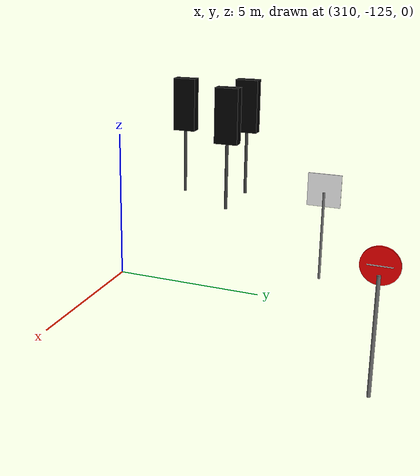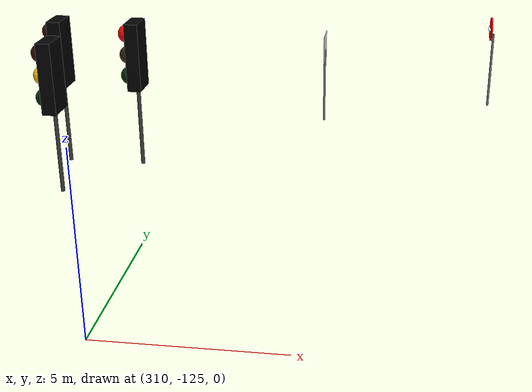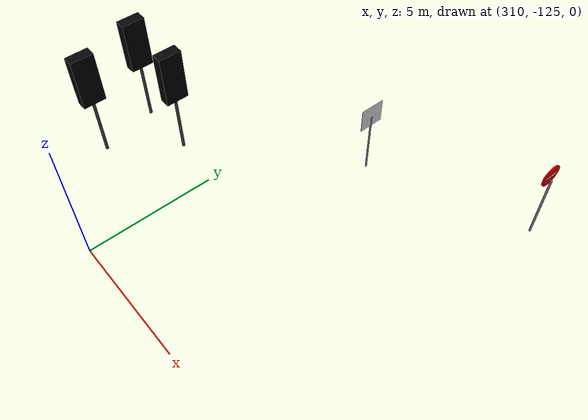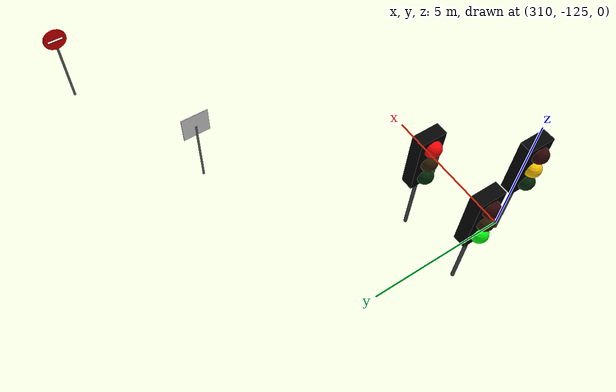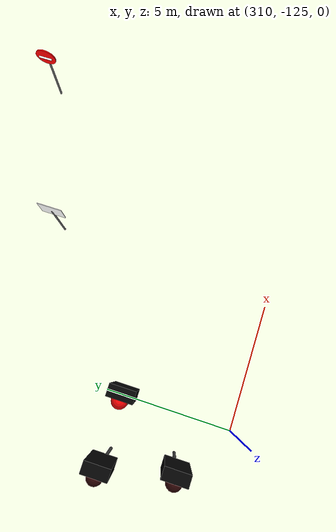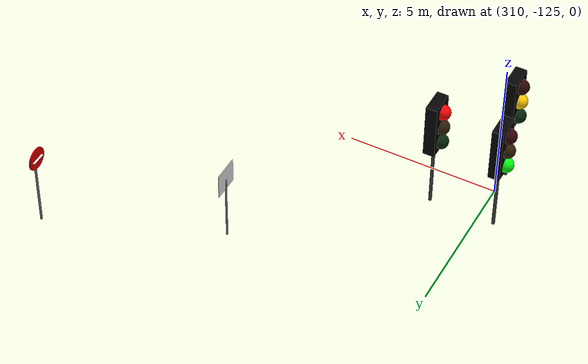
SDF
<sdf version="1.10">
 <world name="sonoma">
  <scene>
   <grid>false</grid>
   <ambient>0.400000006 0.400000006 0.400000006 1</ambient>
   <background>0.699999988 0.699999988 0.699999988 1</background>
   <shadows>true</shadows>
  </scene>
  <plugin name="ignition::gazebo::systems::Physics" filename="ignition-gazebo-physics-system"/>
  <plugin name="ignition::gazebo::systems::Sensors" filename="ignition-gazebo-sensors-system">
   <render_engine>ogre2</render_engine>
  </plugin>
  <plugin name="ignition::gazebo::systems::UserCommands" filename="ignition-gazebo-user-commands-system"/>
  <plugin name="ignition::gazebo::systems::SceneBroadcaster" filename="ignition-gazebo-scene-broadcaster-system"/>
  <gravity>0 0 -9.8000000000000007</gravity>
  <magnetic_field>5.5644999999999998e-06 2.2875799999999999e-05 -4.2388400000000002e-05</magnetic_field>
  <atmosphere type="adiabatic"/>
  <physics type="ode">
   <max_step_size>0.001</max_step_size>
   <real_time_factor>1</real_time_factor>
   <real_time_update_rate>1000</real_time_update_rate>
  </physics>
  <include>
   <uri>model://traffic_light_red_model</uri>
   <name>traffic_light_red_1</name>
   <pose>310.5 -121.0 3 0 0 0</pose>
  </include>
  <include>
   <uri>model://traffic_light_yellow_model</uri>
   <name>traffic_light_yellow_1</name>
   <pose>309.0 -123.0 3 0 0 0</pose>
  </include>
  <include>
   <uri>model://traffic_light_green_model</uri>
   <name>traffic_light_green_1</name>
   <pose>308.5 -121.0 3.0 0 0 0</pose>
  </include>
  <include><uri>model://speed30_new</uri><name>speed30_new_1</name><pose>315.0 -117.0 3.0 0 0 0</pose></include>
  <include>
   <uri>model://stop_sign_model</uri>
   <name>stop_sign_1</name>
   <pose>320.0  -115.0 3.0 0 0 0</pose>
  </include>
 </world>
</sdf>

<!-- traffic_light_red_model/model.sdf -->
<sdf version="1.9">
  <model name="traffic_light_red_model">
    <static>true</static>
    <link name="traffic_light_link">
      <collision name="pole_collision">
        <pose>0 0 1.25 0 0 0</pose>
        <geometry><cylinder><radius>0.05</radius><length>2.5</length></cylinder></geometry>
      </collision>
      <visual name="pole_visual">
        <pose>0 0 1.25 0 0 0</pose>
        <geometry><cylinder><radius>0.05</radius><length>2.5</length></cylinder></geometry>
        <material><ambient>0.25 0.25 0.25 1</ambient><diffuse>0.25 0.25 0.25 1</diffuse></material>
      </visual>

      <collision name="housing_collision">
        <pose>0 0 3.0 0 0 0</pose>
        <geometry><box><size>0.35 0.75 1.75</size></box></geometry>
      </collision>
      <visual name="housing_visual">
        <pose>0 0 3.0 0 0 0</pose>
        <geometry><box><size>0.35 0.75 1.75</size></box></geometry>
        <material><ambient>0.01 0.01 0.01 1</ambient><diffuse>0.01 0.01 0.01 1</diffuse></material>
      </visual>

      <visual name="red_lamp_visual">
        <pose>-0.20 0 3.55 0 0 0</pose>
        <geometry><sphere><radius>0.23</radius></sphere></geometry>
        <material><ambient>1 0.02 0.02 1</ambient><diffuse>1 0.02 0.02 1</diffuse><emissive>1 0 0 1</emissive></material>
      </visual>
      <visual name="yellow_lamp_visual">
        <pose>-0.20 0 3.00 0 0 0</pose>
        <geometry><sphere><radius>0.23</radius></sphere></geometry>
        <material><ambient>0.18 0.12 0.02 1</ambient><diffuse>0.18 0.12 0.02 1</diffuse><emissive>0 0 0 1</emissive></material>
      </visual>
      <visual name="green_lamp_visual">
        <pose>-0.20 0 2.45 0 0 0</pose>
        <geometry><sphere><radius>0.23</radius></sphere></geometry>
        <material><ambient>0.02 0.16 0.04 1</ambient><diffuse>0.02 0.16 0.04 1</diffuse><emissive>0 0 0 1</emissive></material>
      </visual>
    </link>
  </model>
</sdf>

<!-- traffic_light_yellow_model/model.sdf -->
<sdf version="1.9">
  <model name="traffic_light_yellow_model">
    <static>true</static>
    <link name="traffic_light_link">
      <collision name="pole_collision">
        <pose>0 0 1.25 0 0 0</pose>
        <geometry><cylinder><radius>0.05</radius><length>2.5</length></cylinder></geometry>
      </collision>
      <visual name="pole_visual">
        <pose>0 0 1.25 0 0 0</pose>
        <geometry><cylinder><radius>0.05</radius><length>2.5</length></cylinder></geometry>
        <material><ambient>0.25 0.25 0.25 1</ambient><diffuse>0.25 0.25 0.25 1</diffuse></material>
      </visual>

      <collision name="housing_collision">
        <pose>0 0 3.0 0 0 0</pose>
        <geometry><box><size>0.35 0.75 1.75</size></box></geometry>
      </collision>
      <visual name="housing_visual">
        <pose>0 0 3.0 0 0 0</pose>
        <geometry><box><size>0.35 0.75 1.75</size></box></geometry>
        <material><ambient>0.01 0.01 0.01 1</ambient><diffuse>0.01 0.01 0.01 1</diffuse></material>
      </visual>

      <visual name="red_lamp_visual">
        <pose>-0.20 0 3.55 0 0 0</pose>
        <geometry><sphere><radius>0.23</radius></sphere></geometry>
        <material><ambient>0.18 0.02 0.02 1</ambient><diffuse>0.18 0.02 0.02 1</diffuse><emissive>0 0 0 1</emissive></material>
      </visual>
      <visual name="yellow_lamp_visual">
        <pose>-0.20 0 3.00 0 0 0</pose>
        <geometry><sphere><radius>0.23</radius></sphere></geometry>
        <material><ambient>1 0.78 0.02 1</ambient><diffuse>1 0.78 0.02 1</diffuse><emissive>1 0.55 0 1</emissive></material>
      </visual>
      <visual name="green_lamp_visual">
        <pose>-0.20 0 2.45 0 0 0</pose>
        <geometry><sphere><radius>0.23</radius></sphere></geometry>
        <material><ambient>0.02 0.16 0.04 1</ambient><diffuse>0.02 0.16 0.04 1</diffuse><emissive>0 0 0 1</emissive></material>
      </visual>
    </link>
  </model>
</sdf>

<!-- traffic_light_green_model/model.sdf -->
<sdf version="1.9">
  <model name="traffic_light_green_model">
    <static>true</static>
    <link name="traffic_light_link">
      <collision name="pole_collision">
        <pose>0 0 1.25 0 0 0</pose>
        <geometry><cylinder><radius>0.05</radius><length>2.5</length></cylinder></geometry>
      </collision>
      <visual name="pole_visual">
        <pose>0 0 1.25 0 0 0</pose>
        <geometry><cylinder><radius>0.05</radius><length>2.5</length></cylinder></geometry>
        <material><ambient>0.25 0.25 0.25 1</ambient><diffuse>0.25 0.25 0.25 1</diffuse></material>
      </visual>

      <collision name="housing_collision">
        <pose>0 0 3.0 0 0 0</pose>
        <geometry><box><size>0.35 0.75 1.75</size></box></geometry>
      </collision>
      <visual name="housing_visual">
        <pose>0 0 3.0 0 0 0</pose>
        <geometry><box><size>0.35 0.75 1.75</size></box></geometry>
        <material><ambient>0.01 0.01 0.01 1</ambient><diffuse>0.01 0.01 0.01 1</diffuse></material>
      </visual>

      <visual name="red_lamp_visual">
        <pose>-0.20 0 3.55 0 0 0</pose>
        <geometry><sphere><radius>0.23</radius></sphere></geometry>
        <material><ambient>0.18 0.02 0.02 1</ambient><diffuse>0.18 0.02 0.02 1</diffuse><emissive>0 0 0 1</emissive></material>
      </visual>
      <visual name="yellow_lamp_visual">
        <pose>-0.20 0 3.00 0 0 0</pose>
        <geometry><sphere><radius>0.23</radius></sphere></geometry>
        <material><ambient>0.18 0.12 0.02 1</ambient><diffuse>0.18 0.12 0.02 1</diffuse><emissive>0 0 0 1</emissive></material>
      </visual>
      <visual name="green_lamp_visual">
        <pose>-0.20 0 2.45 0 0 0</pose>
        <geometry><sphere><radius>0.23</radius></sphere></geometry>
        <material><ambient>0.02 1 0.05 1</ambient><diffuse>0.02 1 0.05 1</diffuse><emissive>0 0.8 0.02 1</emissive></material>
      </visual>
    </link>
  </model>
</sdf>

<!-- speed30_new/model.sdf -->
<sdf version="1.9">
  <model name="speed30_new">
    <static>true</static>

    <link name="speed30_link">

      <visual name="pole_visual">
        <pose>0 0 1.10 0 0 0</pose>
        <geometry>
          <cylinder>
            <radius>0.03</radius>
            <length>2.20</length>
          </cylinder>
        </geometry>
        <material>
          <ambient>0.45 0.45 0.45 1</ambient>
          <diffuse>0.45 0.45 0.45 1</diffuse>
        </material>
      </visual>

      <collision name="pole_collision">
        <pose>0 0 1.10 0 0 0</pose>
        <geometry>
          <cylinder>
            <radius>0.03</radius>
            <length>2.20</length>
          </cylinder>
        </geometry>
      </collision>

      <visual name="sign_panel">
        <pose>0 0 2.25 0 0 0</pose>
        <geometry>
          <box>
            <size>0.02 0.80 0.80</size>
          </box>
        </geometry>
        <material>
          <ambient>1 1 1 1</ambient>
          <diffuse>1 1 1 1</diffuse>
          <pbr>
            <metal>
              <albedo_map>model://speed30_new/materials/textures/speed_limit_30.png</albedo_map>
              <roughness>0.5</roughness>
              <metalness>0.0</metalness>
            </metal>
          </pbr>
        </material>
      </visual>

      <collision name="sign_collision">
        <pose>0 0 2.25 0 0 0</pose>
        <geometry>
          <box>
            <size>0.03 0.80 0.80</size>
          </box>
        </geometry>
      </collision>

    </link>
  </model>
</sdf>

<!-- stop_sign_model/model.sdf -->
<sdf version="1.9">
  <model name="stop_sign_model">
    <static>true</static>

    <link name="stop_sign_link">

      <visual name="pole_visual">
        <pose>0 0 1.15 0 0 0</pose>
        <geometry>
          <cylinder>
            <radius>0.035</radius>
            <length>2.3</length>
          </cylinder>
        </geometry>
        <material>
          <ambient>0.45 0.45 0.45 1</ambient>
          <diffuse>0.45 0.45 0.45 1</diffuse>
        </material>
      </visual>

      <visual name="sign_board">
        <pose>-0.08 0 2.45 0 1.5708 0</pose>
        <geometry>
          <cylinder>
            <radius>0.35</radius>
            <length>0.04</length>
            <segments>8</segments>
          </cylinder>
        </geometry>
        <material>
          <ambient>1 0 0 1</ambient>
          <diffuse>1 0 0 1</diffuse>
          <emissive>0.3 0 0 1</emissive>
        </material>
      </visual>

      <visual name="sign_center_white">
        <pose>-0.105 0 2.45 0 1.5708 0</pose>
        <geometry>
          <box>
            <size>0.015 0.45 0.12</size>
          </box>
        </geometry>
        <material>
          <ambient>1 1 1 1</ambient>
          <diffuse>1 1 1 1</diffuse>
          <emissive>0.4 0.4 0.4 1</emissive>
        </material>
      </visual>

      <collision name="stop_sign_collision">
        <pose>0 0 1.4 0 0 0</pose>
        <geometry>
          <box>
            <size>0.5 0.5 2.8</size>
          </box>
        </geometry>
      </collision>

    </link>
  </model>
</sdf>
